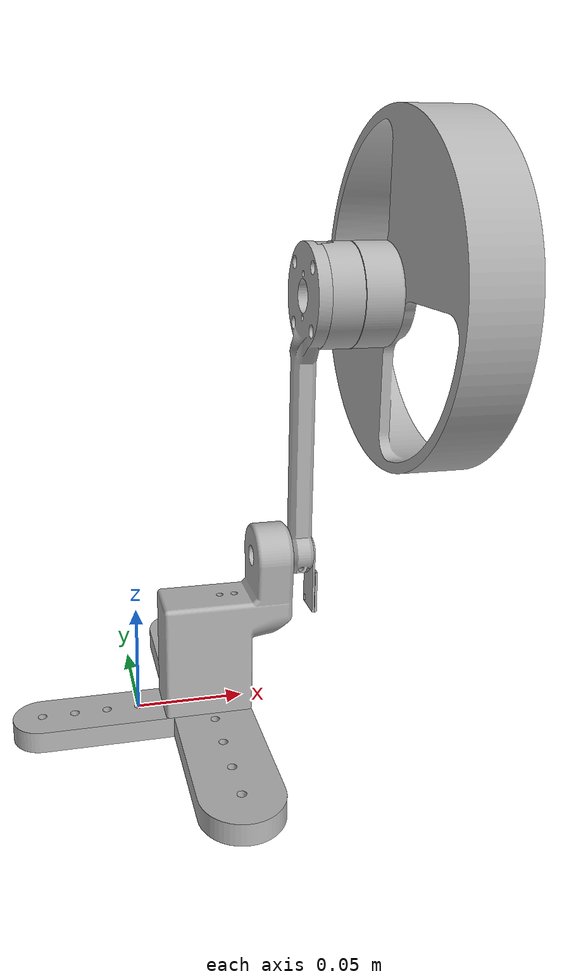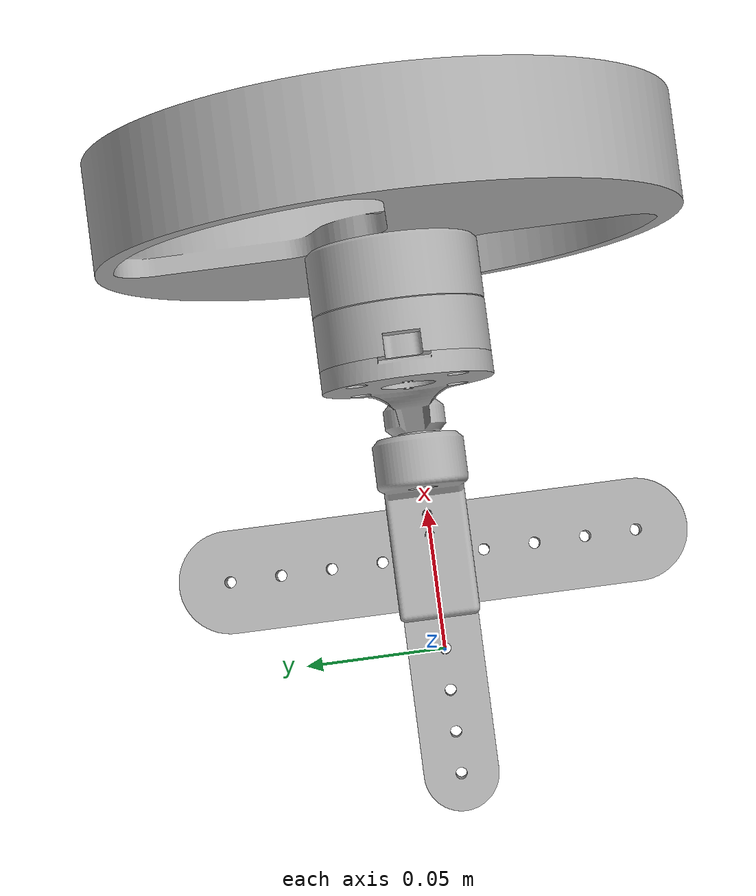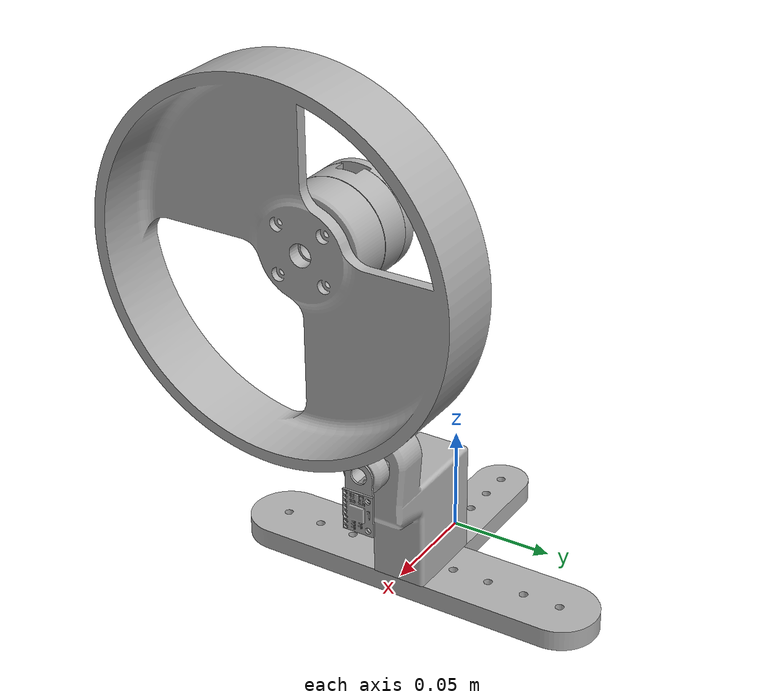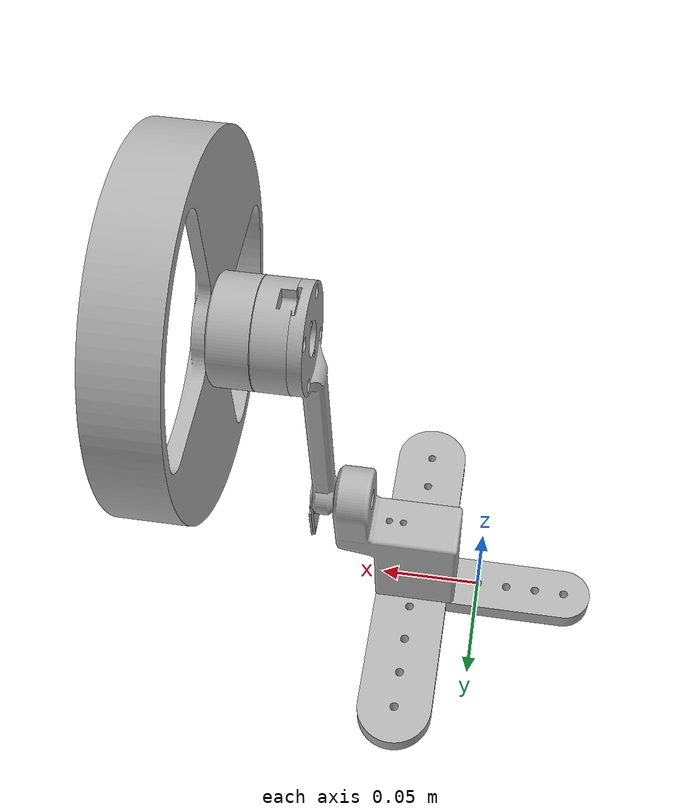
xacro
<?xml version="1.0" ?>
<robot name="reaction_wheel" xmlns:xacro="http://www.ros.org/wiki/urdf.xacro">

    <!-- Proprioceptive sensors -->
    <xacro:include filename="$(find reaction_wheel_description)/sensors/urdf/proprioceptive_sensors.gazebo.xacro"/>

    <xacro:mpu6050 parent="imu_support_link" id="1" x="0.0" y="0.001" z="0.0" roll="0.0" pitch="0.0" yaw="1.5708"/>

    <xacro:include filename="$(find reaction_wheel_description)/urdf/reaction_wheel.xacro"/>

</robot>

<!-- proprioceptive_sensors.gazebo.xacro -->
<robot xmlns:xacro="http://www.ros.org/wiki/xacro">
    <xacro:macro name="mpu6050" params="parent id x y z roll pitch yaw topic:=/imu">

        <xacro:property name="mass_imu_link"                  value="0.050"/>
        <xacro:property name="volume_imu_link"                value="3.51353363e-07"/>

        <joint name="imu_${id}_joint" type="fixed" >
        <origin xyz="${x} ${y} ${z}" rpy="${roll} ${pitch} ${yaw}" />
        <parent link="${parent}" />
        <child link="imu_${id}_link"/>
        </joint>

        <link name="imu_${id}_link">
            <inertial>
                <origin xyz="0.000696 0.000240 0.000157" rpy="0.0 0.0 0.0"/>
                <mass value="${mass_imu_link}"/>
                <inertia ixx="${(mass_imu_link / volume_imu_link) * 1.5772140625e-11}"  ixy="${(mass_imu_link / volume_imu_link) * 1.5281029e-14}"   ixz="${(mass_imu_link / volume_imu_link) * -2.7933832000000002e-14}"
                         iyy="${(mass_imu_link / volume_imu_link) * 1.0417941406e-11}"  iyz="${(mass_imu_link / volume_imu_link) * -2.0175156000000003e-14}"
                         izz="${(mass_imu_link / volume_imu_link) * 5.513003418000001e-12}"/>
            </inertial>
            <visual>
                <origin xyz="0.0 0.0 0.0" rpy="0 0 0"/>
                <geometry>
                <mesh filename="package://reaction_wheel_description/sensors/meshes/MPU6050.stl"/>
                </geometry>
                <material name="silver"/>
            </visual>
            <collision>
                <origin xyz="0.0 0.0 0.0" rpy="0.0 0.0 0.0"/>
                <geometry>
                <mesh filename="package://reaction_wheel_description/sensors/meshes/MPU6050.stl"/>
                </geometry>
            </collision>
        </link>

        <gazebo reference="imu_${id}_link">
           <material>Gazebo/White</material>
            <mu1>0.2</mu1>
            <mu2>0.2</mu2>
            <selfCollide>true</selfCollide>
            <turnGravityOff>false</turnGravityOff>
            <sensor name="imu_sensor" type="imu">
                <always_on>true</always_on>
                <update_rate>100</update_rate>
                <visualize>true</visualize>
                <topic>${topic}</topic>
                <plugin filename="libgazebo_ros_imu_sensor.so" name="imu_plugin">
                <topicName>${topic}</topicName>
                <bodyName>imu_${id}_link</bodyName>
                <updateRateHZ>100.0</updateRateHZ>
                <gaussianNoise>0.005</gaussianNoise>
                <xyzOffset>0 0 0</xyzOffset>
                <rpyOffset>0 0 0</rpyOffset>
                <frameName>imu_${id}_link</frameName>
                </plugin>
                <pose>0 0 0 0 0 0</pose>
            </sensor>
        </gazebo>

    </xacro:macro>
</robot>

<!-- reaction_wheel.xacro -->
<robot xmlns:xacro="http://www.ros.org/wiki/urdf.xacro" name="reaction_wheel">

<xacro:include filename="$(find reaction_wheel_description)/urdf/materials.xacro" />

<xacro:property name="mass_base_link"                 value="0.150"/>
<xacro:property name="mass_bottom_swingup_link"       value="0.150"/>
<xacro:property name="mass_pendulum_arm_link"         value="0.100"/>
<xacro:property name="mass_estator_link"              value="0.025"/>
<xacro:property name="mass_rotor_link"                value="0.100"/>
<xacro:property name="mass_reaction_wheel_link"       value="0.250"/>
<xacro:property name="mass_imu_support_link"          value="0.010"/>

<xacro:property name="volume_base_link"               value="0.000083"/>
<xacro:property name="volume_bottom_swingup_link"     value="0.000079"/>
<xacro:property name="volume_pendulum_arm_link"       value="0.000019"/>
<xacro:property name="volume_estator_link"            value="0.000024"/>
<xacro:property name="volume_rotor_link"              value="0.000029"/>
<xacro:property name="volume_reaction_wheel_link"     value="0.000123"/>
<xacro:property name="volume_imu_support_link"        value="4.12078003e-07"/>

<!-- Used for fixing robot to Gazebo 'base_link' -->
<link name="world"></link>

<joint name="fixed" type="fixed">
  <origin xyz="0 0 0" rpy="0 0 0"/>
  <parent link="world"/>
  <child link="base_link"/>
</joint>

<!-- Base_link -->
<link name="base_link"></link>

<joint name="base_joint" type="fixed">
  <origin xyz="0.0 0.0 0.0" rpy="0 0 -1.5708"/>
  <parent link="base_link"/>
  <child link="base_track_link"/>
</joint>

<link name="base_track_link">
  <inertial>
    <origin xyz="0.0 0.02144 -0.005" rpy="0 0 0"/>
    <mass value="${mass_base_link}"/>
    <inertia ixx="${(mass_base_link / volume_base_link) * 5.7186660000000005e-08}"  ixy="${(mass_base_link / volume_base_link) * 0.0}"                      ixz="${(mass_base_link / volume_base_link) * 0.0}"
             iyy="${(mass_base_link / volume_base_link) * 1.68217168e-07}"          iyz="${(mass_base_link / volume_base_link) * -3.1249000000000004e-17}"
             izz="${(mass_base_link / volume_base_link) * 2.2402814400000002e-07}"/>
  </inertial>
  <visual>
    <origin xyz="0 0 0" rpy="0 0 0"/>
    <geometry>
      <mesh filename="package://reaction_wheel_description/meshes/base.stl"/>
    </geometry>
    <material name="silver"/>
  </visual>
  <collision>
    <origin xyz="0 0 0" rpy="0 0 0"/>
    <geometry>
      <mesh filename="package://reaction_wheel_description/meshes/base.stl"/>
    </geometry>
  </collision>
</link>

<!-- Bottom_swingup -->
<joint name="bottom_swingup_joint" type="fixed">
  <origin xyz="0 0.032 0" rpy="0 0 3.1415"/>
  <parent link="base_track_link"/>
  <child link="bottom_swingup_link"/>
</joint>

<link name="bottom_swingup_link">
  <inertial>
    <origin xyz="0.0 -0.007492 0.034894" rpy="0.0 0.0 0.0"/>
    <mass value="${mass_bottom_swingup_link}"/>
    <inertia ixx="${(mass_bottom_swingup_link / volume_bottom_swingup_link) * 5.5572128000000004e-08}"  ixy="${(mass_bottom_swingup_link / volume_bottom_swingup_link) * -1.0107640800000001e-13}"   ixz="${(mass_bottom_swingup_link / volume_bottom_swingup_link) * -8.043631e-15}"
             iyy="${(mass_bottom_swingup_link / volume_bottom_swingup_link) * 3.8304836000000005e-08}"  iyz="${(mass_bottom_swingup_link / volume_bottom_swingup_link) * 1.4459554000000002e-08}"
             izz="${(mass_bottom_swingup_link / volume_bottom_swingup_link) * 2.7081984000000002e-08}"/>
  </inertial>
  <visual>
    <origin xyz="0.0 0.0 0.0" rpy="0.0 0.0 0.0"/>
    <geometry>
      <mesh filename="package://reaction_wheel_description/meshes/Bottom_swingup.stl"/>
    </geometry>
    <material name="silver"/>
  </visual>
  <collision>
    <origin xyz="0.0 0.0 0.0" rpy="0.0 0.0 0.0"/>
    <geometry>
      <mesh filename="package://reaction_wheel_description/meshes/Bottom_swingup.stl"/>
    </geometry>
  </collision>
</link>

<!-- Pendulum_arm -->
<joint name="pendulum_arm_joint" type="continuous">
  <origin xyz="0.0 -0.04060 0.072471" rpy="0 0 -3.1415"/>
  <parent link="bottom_swingup_link"/>
  <child link="pendulum_arm_link"/>
  <axis xyz="0.0 -1.0 0.0"/>
  <limit effort="0" velocity="1000.0"/>
  <dynamics damping="0.003" friction="0.005"/>
</joint>

<link name="pendulum_arm_link">
  <inertial>
    <origin xyz="-0.000018 0.005856 0.077773" rpy="0.0 0.0 0.0"/>
    <mass value="${mass_pendulum_arm_link}"/>
    <inertia ixx="${(mass_pendulum_arm_link / volume_pendulum_arm_link) * 3.9527372e-08}"           ixy="${(mass_pendulum_arm_link / volume_pendulum_arm_link) * -2.96534882e-13}"   ixz="${(mass_pendulum_arm_link / volume_pendulum_arm_link) * -2.9251121094e-11}"
             iyy="${(mass_pendulum_arm_link / volume_pendulum_arm_link) * 4.0878812000000005e-08}"  iyz="${(mass_pendulum_arm_link / volume_pendulum_arm_link) * -7.232411875e-10}"
             izz="${(mass_pendulum_arm_link / volume_pendulum_arm_link) * 1.6034846250000002e-09}"/>
  </inertial>
  <visual>
      <origin xyz="0.0 0.0 0.0" rpy="0 0 0"/>
      <geometry>
        <mesh filename="package://reaction_wheel_description/meshes/Pendulum_arm.stl"/>
      </geometry>
      <material name="silver"/>
  </visual>
  <collision>
    <origin xyz="0.0 0.0 0.0" rpy="0 0 0"/>
    <geometry>
      <mesh filename="package://reaction_wheel_description/meshes/Pendulum_arm.stl"/>
    </geometry>
  </collision>
</link>

<!-- Estator -->
<joint name="estator_joint" type="fixed">
  <origin xyz="0.0 0.02480 0.119917" rpy="1.5708 0.785398 3.1415"/>
  <parent link="pendulum_arm_link"/>
  <child link="estator_link"/>
</joint>

<link name="estator_link">
  <inertial>
    <origin xyz="0.000221 -0.000221 -0.007484" rpy="0.0 0.0 0.0"/>
    <mass value="${mass_estator_link}"/>
    <inertia ixx="${(mass_estator_link / volume_estator_link) * 3.78079e-09}"  ixy="${(mass_estator_link / volume_estator_link) * -7.7068625e-11}"   ixz="${(mass_estator_link / volume_estator_link) * 2.3226736328000002e-11}"
             iyy="${(mass_estator_link / volume_estator_link) * 3.78079e-09}"  iyz="${(mass_estator_link / volume_estator_link) * -2.3226728516e-11}"
             izz="${(mass_estator_link / volume_estator_link) * 6.710850000000001e-09}"/>
  </inertial>
  <visual>
    <origin xyz="0.0 0.0 0.0" rpy="0 0 0"/>
    <geometry>
      <mesh filename="package://reaction_wheel_description/meshes/Estator.stl"/>
    </geometry>
    <material name="silver"/>
  </visual>
  <collision>
  <origin xyz="0.0 0.0 0.0" rpy="0 0 0"/>
    <geometry>
      <mesh filename="package://reaction_wheel_description/meshes/Estator.stl"/>
    </geometry>
  </collision>
</link>

<!-- Rotor -->
<joint name="rotor_joint" type="continuous">
  <origin xyz="0.0 0.0 0.0" rpy="0 0 0"/>
  <parent link="estator_link"/>
  <child link="rotor_link"/>
  <axis xyz="0.0 0.0 1.0"/>
  <limit effort="1000" velocity="1000.0"/>
  <dynamics damping="0.003" friction="0.005"/>
</joint>

<link name="rotor_link">
  <inertial>
    <origin xyz="0.0 0.0 0.008729" rpy="0.0 0.0 0.0"/>
    <mass value="${mass_rotor_link}"/>
    <inertia ixx="${(mass_rotor_link / volume_rotor_link) * 4.8425775e-09}"  ixy="${(mass_rotor_link / volume_rotor_link) * 3.3300000000000003e-19}"   ixz="${(mass_rotor_link / volume_rotor_link) * 1.6039000000000002e-17}"
             iyy="${(mass_rotor_link / volume_rotor_link) * 4.8425775e-09}"  iyz="${(mass_rotor_link / volume_rotor_link) * -3.28e-19}"
             izz="${(mass_rotor_link / volume_rotor_link) * 8.2165075e-09}"/>
  </inertial>
  <visual>
    <origin xyz="0.0 0.0 0.0" rpy="0 0 0"/>
    <geometry>
      <mesh filename="package://reaction_wheel_description/meshes/Rotor.stl"/>
    </geometry>
    <material name="silver"/>
  </visual>
  <collision>
    <origin xyz="0.0 0.0 0.0" rpy="0 0 0"/>
    <geometry>
      <mesh filename="package://reaction_wheel_description/meshes/Rotor.stl"/>
    </geometry>
  </collision>
</link>

<!-- Reaction wheel -->
<joint name="reaction_wheel_joint" type="fixed">
  <origin xyz="0.0 0.0 0.01750" rpy="1.5708 0.0 -0.785398"/>
  <parent link="rotor_link"/>
  <child link="reaction_wheel_link"/>
</joint>

<link name="reaction_wheel_link">
  <inertial>
    <origin xyz="0.0 0.009986 0.0" rpy="0.0 0.0 0.0"/>
    <mass value="${mass_reaction_wheel_link}"/>
    <inertia ixx="${(mass_reaction_wheel_link / volume_reaction_wheel_link) * 2.9717174400000003e-07}"  ixy="${(mass_reaction_wheel_link / volume_reaction_wheel_link) * -2.3289100000000002e-15}"   ixz="${(mass_reaction_wheel_link / volume_reaction_wheel_link) * 4.140372e-08}"
             iyy="${(mass_reaction_wheel_link / volume_reaction_wheel_link) * 5.741944960000001e-07}"   iyz="${(mass_reaction_wheel_link / volume_reaction_wheel_link) * 6.511330000000001e-15}"
             izz="${(mass_reaction_wheel_link / volume_reaction_wheel_link) * 2.9724547200000003e-07}"/>
  </inertial>
  <visual>
    <origin xyz="0.0 0.0 0.0" rpy="0 0 0"/>
    <geometry>
      <mesh filename="package://reaction_wheel_description/meshes/Reaction_wheel.stl"/>
    </geometry>
    <material name="silver"/>
  </visual>
  <collision>
    <origin xyz="0.0 0.0 0.0" rpy="0.0 0.0 0.0"/>
    <geometry>
      <mesh filename="package://reaction_wheel_description/meshes/Reaction_wheel.stl"/>
    </geometry>
  </collision>
</link>

<!-- Imu_Support -->
<joint name="imu_support_joint" type="fixed">
  <origin xyz="0.0 0.01 -0.01825" rpy="0.0 0.0 0.0"/>
  <parent link="pendulum_arm_link"/>
  <child link="imu_support_link"/>
</joint>

<link name="imu_support_link">
  <inertial>
    <origin xyz="0.000166 0.000500 0.005421" rpy="0.0 0.0 0.0"/>
    <mass value="${mass_imu_support_link}"/>
    <inertia ixx="${(mass_imu_support_link / volume_imu_support_link) * 3.7226636719000007e-11}"  ixy="${(mass_imu_support_link / volume_imu_support_link) * 2.0000000000000002e-21}"   ixz="${(mass_imu_support_link / volume_imu_support_link) * 3.7161752300000003e-13}"
             iyy="${(mass_imu_support_link / volume_imu_support_link) * 4.4228464844e-11}"        iyz="${(mass_imu_support_link / volume_imu_support_link) * 9.000000000000001e-21}"
             izz="${(mass_imu_support_link / volume_imu_support_link) * 7.070509766000001e-12}"/>
  </inertial>
  <visual>
    <origin xyz="0.0 0.0 0.0" rpy="0 0 0"/>
    <geometry>
      <mesh filename="package://reaction_wheel_description/meshes/Imu_support.stl"/>
    </geometry>
    <material name="silver"/>
  </visual>
  <collision>
    <origin xyz="0.0 0.0 0.0" rpy="0.0 0.0 0.0"/>
    <geometry>
      <mesh filename="package://reaction_wheel_description/meshes/Imu_support.stl"/>
    </geometry>
  </collision>
</link>

<transmission name="pendulum_arm_transmission">
  <type>transmission_interface/SimpleTransmission</type>
  <joint name="pendulum_arm_joint">
    <hardwareInterface>hardware_interface/EffortJointInterface</hardwareInterface>
  </joint>
  <actuator name="pendulum_arm_motor">
    <hardwareInterface>hardware_interface/EffortJointInterface</hardwareInterface>
    <mechanicalReduction>1</mechanicalReduction>
  </actuator>
</transmission>

<transmission name="rotor_transmission">
  <type>transmission_interface/SimpleTransmission</type>
  <joint name="rotor_joint">
    <hardwareInterface>hardware_interface/EffortJointInterface</hardwareInterface>
  </joint>
  <actuator name="rotor_motor">
    <hardwareInterface>hardware_interface/EffortJointInterface</hardwareInterface>
    <mechanicalReduction>1</mechanicalReduction>
  </actuator>
</transmission>

<xacro:include filename="$(find reaction_wheel_description)/urdf/reaction_wheel.gazebo.xacro"/>

</robot>

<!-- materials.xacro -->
<robot name="reaction_wheel" xmlns:xacro="http://www.ros.org/wiki/xacro" >

<material name="silver">
  <color rgba="0.700 0.700 0.700 1.000"/>
</material>

<material name="white">
  <color rgba="1.0 1.0 1.0 1.000"/>
</material>

<material name="black">
  <color rgba="0 0 0 1.0"/>
</material>

</robot>
